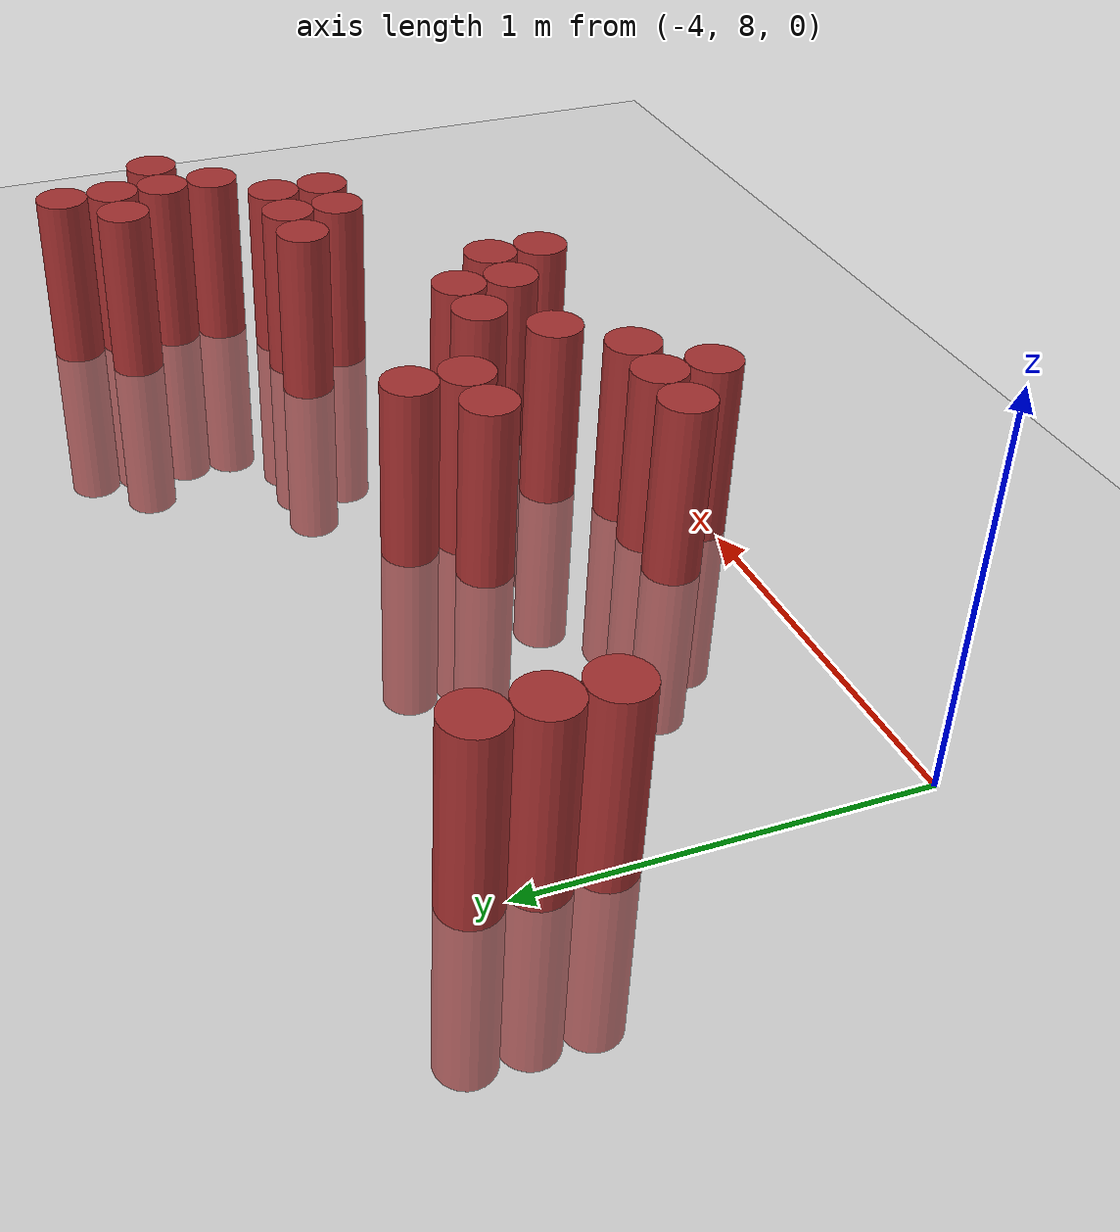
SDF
<sdf version="1.6">
 <world name="default">
  <model name="ground_plane">
   <static>1</static>
   <link name="link">
    <collision name="collision">
     <geometry><plane><normal>0 0 1</normal><size>100 100</size></plane></geometry>
     <surface><friction><ode><mu>100</mu><mu2>50</mu2></ode></friction></surface>
    </collision>
    <visual name="visual">
     <cast_shadows>0</cast_shadows>
     <geometry><plane><normal>0 0 1</normal><size>100 100</size></plane></geometry>
     <material>
      <script><uri>file://media/materials/scripts/gazebo.material</uri><name>Gazebo/Grey</name></script>
     </material>
    </visual>
   </link>
  </model>
  <model name="unit_cylinder_160">
   <static>1</static>
   <pose>-3.975000 8.775000 0.000000 0.000000 0.000000 0.000000</pose>
   <link name="link">
    <inertial>
     <mass>1</mass>
     <inertia><ixx>0.145833</ixx><ixy>0</ixy><ixz>0</ixz><iyy>0.145833</iyy><iyz>0</iyz><izz>0.125</izz></inertia>
    </inertial>
    <collision name="collision">
     <geometry><cylinder><radius>0.075000</radius><length>1</length></cylinder></geometry>
    </collision>
    <visual name="visual">
     <geometry><cylinder><radius>0.075000</radius><length>1</length></cylinder></geometry>
     <material>
      <ambient>0.648000 0.192000 0.192000 1</ambient>
      <diffuse>0.648000 0.192000 0.192000 1</diffuse>
     </material>
     <material>
      <script><name>Gazebo/Grey</name><uri>file://media/materials/scripts/gazebo.material</uri></script>
     </material>
    </visual>
   </link>
  </model>
  <model name="unit_cylinder_161">
   <static>1</static>
   <pose>-3.975000 8.925000 0.000000 0.000000 0.000000 0.000000</pose>
   <link name="link">
    <inertial>
     <mass>1</mass>
     <inertia><ixx>0.145833</ixx><ixy>0</ixy><ixz>0</ixz><iyy>0.145833</iyy><iyz>0</iyz><izz>0.125</izz></inertia>
    </inertial>
    <collision name="collision">
     <geometry><cylinder><radius>0.075000</radius><length>1</length></cylinder></geometry>
    </collision>
    <visual name="visual">
     <geometry><cylinder><radius>0.075000</radius><length>1</length></cylinder></geometry>
     <material>
      <ambient>0.648000 0.192000 0.192000 1</ambient>
      <diffuse>0.648000 0.192000 0.192000 1</diffuse>
     </material>
     <material>
      <script><name>Gazebo/Grey</name><uri>file://media/materials/scripts/gazebo.material</uri></script>
     </material>
    </visual>
   </link>
  </model>
  <model name="unit_cylinder_162">
   <static>1</static>
   <pose>-3.975000 9.075000 0.000000 0.000000 0.000000 0.000000</pose>
   <link name="link">
    <inertial>
     <mass>1</mass>
     <inertia><ixx>0.145833</ixx><ixy>0</ixy><ixz>0</ixz><iyy>0.145833</iyy><iyz>0</iyz><izz>0.125</izz></inertia>
    </inertial>
    <collision name="collision">
     <geometry><cylinder><radius>0.075000</radius><length>1</length></cylinder></geometry>
    </collision>
    <visual name="visual">
     <geometry><cylinder><radius>0.075000</radius><length>1</length></cylinder></geometry>
     <material>
      <ambient>0.648000 0.192000 0.192000 1</ambient>
      <diffuse>0.648000 0.192000 0.192000 1</diffuse>
     </material>
     <material>
      <script><name>Gazebo/Grey</name><uri>file://media/materials/scripts/gazebo.material</uri></script>
     </material>
    </visual>
   </link>
  </model>
  <model name="unit_cylinder_169">
   <static>1</static>
   <pose>-3.075000 8.175000 0.000000 0.000000 0.000000 0.000000</pose>
   <link name="link">
    <inertial>
     <mass>1</mass>
     <inertia><ixx>0.145833</ixx><ixy>0</ixy><ixz>0</ixz><iyy>0.145833</iyy><iyz>0</iyz><izz>0.125</izz></inertia>
    </inertial>
    <collision name="collision">
     <geometry><cylinder><radius>0.075000</radius><length>1</length></cylinder></geometry>
    </collision>
    <visual name="visual">
     <geometry><cylinder><radius>0.075000</radius><length>1</length></cylinder></geometry>
     <material>
      <ambient>0.648000 0.192000 0.192000 1</ambient>
      <diffuse>0.648000 0.192000 0.192000 1</diffuse>
     </material>
     <material>
      <script><name>Gazebo/Grey</name><uri>file://media/materials/scripts/gazebo.material</uri></script>
     </material>
    </visual>
   </link>
  </model>
  <model name="unit_cylinder_172">
   <static>1</static>
   <pose>-2.925000 8.025000 0.000000 0.000000 0.000000 0.000000</pose>
   <link name="link">
    <inertial>
     <mass>1</mass>
     <inertia><ixx>0.145833</ixx><ixy>0</ixy><ixz>0</ixz><iyy>0.145833</iyy><iyz>0</iyz><izz>0.125</izz></inertia>
    </inertial>
    <collision name="collision">
     <geometry><cylinder><radius>0.075000</radius><length>1</length></cylinder></geometry>
    </collision>
    <visual name="visual">
     <geometry><cylinder><radius>0.075000</radius><length>1</length></cylinder></geometry>
     <material>
      <ambient>0.648000 0.192000 0.192000 1</ambient>
      <diffuse>0.648000 0.192000 0.192000 1</diffuse>
     </material>
     <material>
      <script><name>Gazebo/Grey</name><uri>file://media/materials/scripts/gazebo.material</uri></script>
     </material>
    </visual>
   </link>
  </model>
  <model name="unit_cylinder_173">
   <static>1</static>
   <pose>-2.925000 8.175000 0.000000 0.000000 0.000000 0.000000</pose>
   <link name="link">
    <inertial>
     <mass>1</mass>
     <inertia><ixx>0.145833</ixx><ixy>0</ixy><ixz>0</ixz><iyy>0.145833</iyy><iyz>0</iyz><izz>0.125</izz></inertia>
    </inertial>
    <collision name="collision">
     <geometry><cylinder><radius>0.075000</radius><length>1</length></cylinder></geometry>
    </collision>
    <visual name="visual">
     <geometry><cylinder><radius>0.075000</radius><length>1</length></cylinder></geometry>
     <material>
      <ambient>0.648000 0.192000 0.192000 1</ambient>
      <diffuse>0.648000 0.192000 0.192000 1</diffuse>
     </material>
     <material>
      <script><name>Gazebo/Grey</name><uri>file://media/materials/scripts/gazebo.material</uri></script>
     </material>
    </visual>
   </link>
  </model>
  <model name="unit_cylinder_174">
   <static>1</static>
   <pose>-2.925000 8.625000 0.000000 0.000000 0.000000 0.000000</pose>
   <link name="link">
    <inertial>
     <mass>1</mass>
     <inertia><ixx>0.145833</ixx><ixy>0</ixy><ixz>0</ixz><iyy>0.145833</iyy><iyz>0</iyz><izz>0.125</izz></inertia>
    </inertial>
    <collision name="collision">
     <geometry><cylinder><radius>0.075000</radius><length>1</length></cylinder></geometry>
    </collision>
    <visual name="visual">
     <geometry><cylinder><radius>0.075000</radius><length>1</length></cylinder></geometry>
     <material>
      <ambient>0.648000 0.192000 0.192000 1</ambient>
      <diffuse>0.648000 0.192000 0.192000 1</diffuse>
     </material>
     <material>
      <script><name>Gazebo/Grey</name><uri>file://media/materials/scripts/gazebo.material</uri></script>
     </material>
    </visual>
   </link>
  </model>
  <model name="unit_cylinder_175">
   <static>1</static>
   <pose>-2.775000 8.175000 0.000000 0.000000 0.000000 0.000000</pose>
   <link name="link">
    <inertial>
     <mass>1</mass>
     <inertia><ixx>0.145833</ixx><ixy>0</ixy><ixz>0</ixz><iyy>0.145833</iyy><iyz>0</iyz><izz>0.125</izz></inertia>
    </inertial>
    <collision name="collision">
     <geometry><cylinder><radius>0.075000</radius><length>1</length></cylinder></geometry>
    </collision>
    <visual name="visual">
     <geometry><cylinder><radius>0.075000</radius><length>1</length></cylinder></geometry>
     <material>
      <ambient>0.648000 0.192000 0.192000 1</ambient>
      <diffuse>0.648000 0.192000 0.192000 1</diffuse>
     </material>
     <material>
      <script><name>Gazebo/Grey</name><uri>file://media/materials/scripts/gazebo.material</uri></script>
     </material>
    </visual>
   </link>
  </model>
  <model name="unit_cylinder_176">
   <static>1</static>
   <pose>-2.775000 8.625000 0.000000 0.000000 0.000000 0.000000</pose>
   <link name="link">
    <inertial>
     <mass>1</mass>
     <inertia><ixx>0.145833</ixx><ixy>0</ixy><ixz>0</ixz><iyy>0.145833</iyy><iyz>0</iyz><izz>0.125</izz></inertia>
    </inertial>
    <collision name="collision">
     <geometry><cylinder><radius>0.075000</radius><length>1</length></cylinder></geometry>
    </collision>
    <visual name="visual">
     <geometry><cylinder><radius>0.075000</radius><length>1</length></cylinder></geometry>
     <material>
      <ambient>0.648000 0.192000 0.192000 1</ambient>
      <diffuse>0.648000 0.192000 0.192000 1</diffuse>
     </material>
     <material>
      <script><name>Gazebo/Grey</name><uri>file://media/materials/scripts/gazebo.material</uri></script>
     </material>
    </visual>
   </link>
  </model>
  <model name="unit_cylinder_177">
   <static>1</static>
   <pose>-2.775000 8.775000 0.000000 0.000000 0.000000 0.000000</pose>
   <link name="link">
    <inertial>
     <mass>1</mass>
     <inertia><ixx>0.145833</ixx><ixy>0</ixy><ixz>0</ixz><iyy>0.145833</iyy><iyz>0</iyz><izz>0.125</izz></inertia>
    </inertial>
    <collision name="collision">
     <geometry><cylinder><radius>0.075000</radius><length>1</length></cylinder></geometry>
    </collision>
    <visual name="visual">
     <geometry><cylinder><radius>0.075000</radius><length>1</length></cylinder></geometry>
     <material>
      <ambient>0.648000 0.192000 0.192000 1</ambient>
      <diffuse>0.648000 0.192000 0.192000 1</diffuse>
     </material>
     <material>
      <script><name>Gazebo/Grey</name><uri>file://media/materials/scripts/gazebo.material</uri></script>
     </material>
    </visual>
   </link>
  </model>
  <model name="unit_cylinder_178">
   <static>1</static>
   <pose>-2.625000 8.325000 0.000000 0.000000 0.000000 0.000000</pose>
   <link name="link">
    <inertial>
     <mass>1</mass>
     <inertia><ixx>0.145833</ixx><ixy>0</ixy><ixz>0</ixz><iyy>0.145833</iyy><iyz>0</iyz><izz>0.125</izz></inertia>
    </inertial>
    <collision name="collision">
     <geometry><cylinder><radius>0.075000</radius><length>1</length></cylinder></geometry>
    </collision>
    <visual name="visual">
     <geometry><cylinder><radius>0.075000</radius><length>1</length></cylinder></geometry>
     <material>
      <ambient>0.648000 0.192000 0.192000 1</ambient>
      <diffuse>0.648000 0.192000 0.192000 1</diffuse>
     </material>
     <material>
      <script><name>Gazebo/Grey</name><uri>file://media/materials/scripts/gazebo.material</uri></script>
     </material>
    </visual>
   </link>
  </model>
  <model name="unit_cylinder_179">
   <static>1</static>
   <pose>-2.475000 8.475000 0.000000 0.000000 0.000000 0.000000</pose>
   <link name="link">
    <inertial>
     <mass>1</mass>
     <inertia><ixx>0.145833</ixx><ixy>0</ixy><ixz>0</ixz><iyy>0.145833</iyy><iyz>0</iyz><izz>0.125</izz></inertia>
    </inertial>
    <collision name="collision">
     <geometry><cylinder><radius>0.075000</radius><length>1</length></cylinder></geometry>
    </collision>
    <visual name="visual">
     <geometry><cylinder><radius>0.075000</radius><length>1</length></cylinder></geometry>
     <material>
      <ambient>0.648000 0.192000 0.192000 1</ambient>
      <diffuse>0.648000 0.192000 0.192000 1</diffuse>
     </material>
     <material>
      <script><name>Gazebo/Grey</name><uri>file://media/materials/scripts/gazebo.material</uri></script>
     </material>
    </visual>
   </link>
  </model>
  <model name="unit_cylinder_180">
   <static>1</static>
   <pose>-2.325000 8.325000 0.000000 0.000000 0.000000 0.000000</pose>
   <link name="link">
    <inertial>
     <mass>1</mass>
     <inertia><ixx>0.145833</ixx><ixy>0</ixy><ixz>0</ixz><iyy>0.145833</iyy><iyz>0</iyz><izz>0.125</izz></inertia>
    </inertial>
    <collision name="collision">
     <geometry><cylinder><radius>0.075000</radius><length>1</length></cylinder></geometry>
    </collision>
    <visual name="visual">
     <geometry><cylinder><radius>0.075000</radius><length>1</length></cylinder></geometry>
     <material>
      <ambient>0.648000 0.192000 0.192000 1</ambient>
      <diffuse>0.648000 0.192000 0.192000 1</diffuse>
     </material>
     <material>
      <script><name>Gazebo/Grey</name><uri>file://media/materials/scripts/gazebo.material</uri></script>
     </material>
    </visual>
   </link>
  </model>
  <model name="unit_cylinder_181">
   <static>1</static>
   <pose>-2.325000 8.475000 0.000000 0.000000 0.000000 0.000000</pose>
   <link name="link">
    <inertial>
     <mass>1</mass>
     <inertia><ixx>0.145833</ixx><ixy>0</ixy><ixz>0</ixz><iyy>0.145833</iyy><iyz>0</iyz><izz>0.125</izz></inertia>
    </inertial>
    <collision name="collision">
     <geometry><cylinder><radius>0.075000</radius><length>1</length></cylinder></geometry>
    </collision>
    <visual name="visual">
     <geometry><cylinder><radius>0.075000</radius><length>1</length></cylinder></geometry>
     <material>
      <ambient>0.648000 0.192000 0.192000 1</ambient>
      <diffuse>0.648000 0.192000 0.192000 1</diffuse>
     </material>
     <material>
      <script><name>Gazebo/Grey</name><uri>file://media/materials/scripts/gazebo.material</uri></script>
     </material>
    </visual>
   </link>
  </model>
  <model name="unit_cylinder_182">
   <static>1</static>
   <pose>-2.175000 8.175000 0.000000 0.000000 0.000000 0.000000</pose>
   <link name="link">
    <inertial>
     <mass>1</mass>
     <inertia><ixx>0.145833</ixx><ixy>0</ixy><ixz>0</ixz><iyy>0.145833</iyy><iyz>0</iyz><izz>0.125</izz></inertia>
    </inertial>
    <collision name="collision">
     <geometry><cylinder><radius>0.075000</radius><length>1</length></cylinder></geometry>
    </collision>
    <visual name="visual">
     <geometry><cylinder><radius>0.075000</radius><length>1</length></cylinder></geometry>
     <material>
      <ambient>0.648000 0.192000 0.192000 1</ambient>
      <diffuse>0.648000 0.192000 0.192000 1</diffuse>
     </material>
     <material>
      <script><name>Gazebo/Grey</name><uri>file://media/materials/scripts/gazebo.material</uri></script>
     </material>
    </visual>
   </link>
  </model>
  <model name="unit_cylinder_183">
   <static>1</static>
   <pose>-2.175000 8.325000 0.000000 0.000000 0.000000 0.000000</pose>
   <link name="link">
    <inertial>
     <mass>1</mass>
     <inertia><ixx>0.145833</ixx><ixy>0</ixy><ixz>0</ixz><iyy>0.145833</iyy><iyz>0</iyz><izz>0.125</izz></inertia>
    </inertial>
    <collision name="collision">
     <geometry><cylinder><radius>0.075000</radius><length>1</length></cylinder></geometry>
    </collision>
    <visual name="visual">
     <geometry><cylinder><radius>0.075000</radius><length>1</length></cylinder></geometry>
     <material>
      <ambient>0.648000 0.192000 0.192000 1</ambient>
      <diffuse>0.648000 0.192000 0.192000 1</diffuse>
     </material>
     <material>
      <script><name>Gazebo/Grey</name><uri>file://media/materials/scripts/gazebo.material</uri></script>
     </material>
    </visual>
   </link>
  </model>
  <model name="unit_cylinder_189">
   <static>1</static>
   <pose>-1.875000 8.775000 0.000000 0.000000 0.000000 0.000000</pose>
   <link name="link">
    <inertial>
     <mass>1</mass>
     <inertia><ixx>0.145833</ixx><ixy>0</ixy><ixz>0</ixz><iyy>0.145833</iyy><iyz>0</iyz><izz>0.125</izz></inertia>
    </inertial>
    <collision name="collision">
     <geometry><cylinder><radius>0.075000</radius><length>1</length></cylinder></geometry>
    </collision>
    <visual name="visual">
     <geometry><cylinder><radius>0.075000</radius><length>1</length></cylinder></geometry>
     <material>
      <ambient>0.648000 0.192000 0.192000 1</ambient>
      <diffuse>0.648000 0.192000 0.192000 1</diffuse>
     </material>
     <material>
      <script><name>Gazebo/Grey</name><uri>file://media/materials/scripts/gazebo.material</uri></script>
     </material>
    </visual>
   </link>
  </model>
  <model name="unit_cylinder_193">
   <static>1</static>
   <pose>-1.725000 8.625000 0.000000 0.000000 0.000000 0.000000</pose>
   <link name="link">
    <inertial>
     <mass>1</mass>
     <inertia><ixx>0.145833</ixx><ixy>0</ixy><ixz>0</ixz><iyy>0.145833</iyy><iyz>0</iyz><izz>0.125</izz></inertia>
    </inertial>
    <collision name="collision">
     <geometry><cylinder><radius>0.075000</radius><length>1</length></cylinder></geometry>
    </collision>
    <visual name="visual">
     <geometry><cylinder><radius>0.075000</radius><length>1</length></cylinder></geometry>
     <material>
      <ambient>0.648000 0.192000 0.192000 1</ambient>
      <diffuse>0.648000 0.192000 0.192000 1</diffuse>
     </material>
     <material>
      <script><name>Gazebo/Grey</name><uri>file://media/materials/scripts/gazebo.material</uri></script>
     </material>
    </visual>
   </link>
  </model>
  <model name="unit_cylinder_194">
   <static>1</static>
   <pose>-1.725000 8.775000 0.000000 0.000000 0.000000 0.000000</pose>
   <link name="link">
    <inertial>
     <mass>1</mass>
     <inertia><ixx>0.145833</ixx><ixy>0</ixy><ixz>0</ixz><iyy>0.145833</iyy><iyz>0</iyz><izz>0.125</izz></inertia>
    </inertial>
    <collision name="collision">
     <geometry><cylinder><radius>0.075000</radius><length>1</length></cylinder></geometry>
    </collision>
    <visual name="visual">
     <geometry><cylinder><radius>0.075000</radius><length>1</length></cylinder></geometry>
     <material>
      <ambient>0.648000 0.192000 0.192000 1</ambient>
      <diffuse>0.648000 0.192000 0.192000 1</diffuse>
     </material>
     <material>
      <script><name>Gazebo/Grey</name><uri>file://media/materials/scripts/gazebo.material</uri></script>
     </material>
    </visual>
   </link>
  </model>
  <model name="unit_cylinder_197">
   <static>1</static>
   <pose>-1.575000 8.625000 0.000000 0.000000 0.000000 0.000000</pose>
   <link name="link">
    <inertial>
     <mass>1</mass>
     <inertia><ixx>0.145833</ixx><ixy>0</ixy><ixz>0</ixz><iyy>0.145833</iyy><iyz>0</iyz><izz>0.125</izz></inertia>
    </inertial>
    <collision name="collision">
     <geometry><cylinder><radius>0.075000</radius><length>1</length></cylinder></geometry>
    </collision>
    <visual name="visual">
     <geometry><cylinder><radius>0.075000</radius><length>1</length></cylinder></geometry>
     <material>
      <ambient>0.648000 0.192000 0.192000 1</ambient>
      <diffuse>0.648000 0.192000 0.192000 1</diffuse>
     </material>
     <material>
      <script><name>Gazebo/Grey</name><uri>file://media/materials/scripts/gazebo.material</uri></script>
     </material>
    </visual>
   </link>
  </model>
  <model name="unit_cylinder_198">
   <static>1</static>
   <pose>-1.575000 8.775000 0.000000 0.000000 0.000000 0.000000</pose>
   <link name="link">
    <inertial>
     <mass>1</mass>
     <inertia><ixx>0.145833</ixx><ixy>0</ixy><ixz>0</ixz><iyy>0.145833</iyy><iyz>0</iyz><izz>0.125</izz></inertia>
    </inertial>
    <collision name="collision">
     <geometry><cylinder><radius>0.075000</radius><length>1</length></cylinder></geometry>
    </collision>
    <visual name="visual">
     <geometry><cylinder><radius>0.075000</radius><length>1</length></cylinder></geometry>
     <material>
      <ambient>0.648000 0.192000 0.192000 1</ambient>
      <diffuse>0.648000 0.192000 0.192000 1</diffuse>
     </material>
     <material>
      <script><name>Gazebo/Grey</name><uri>file://media/materials/scripts/gazebo.material</uri></script>
     </material>
    </visual>
   </link>
  </model>
  <model name="unit_cylinder_199">
   <static>1</static>
   <pose>-1.575000 9.225000 0.000000 0.000000 0.000000 0.000000</pose>
   <link name="link">
    <inertial>
     <mass>1</mass>
     <inertia><ixx>0.145833</ixx><ixy>0</ixy><ixz>0</ixz><iyy>0.145833</iyy><iyz>0</iyz><izz>0.125</izz></inertia>
    </inertial>
    <collision name="collision">
     <geometry><cylinder><radius>0.075000</radius><length>1</length></cylinder></geometry>
    </collision>
    <visual name="visual">
     <geometry><cylinder><radius>0.075000</radius><length>1</length></cylinder></geometry>
     <material>
      <ambient>0.648000 0.192000 0.192000 1</ambient>
      <diffuse>0.648000 0.192000 0.192000 1</diffuse>
     </material>
     <material>
      <script><name>Gazebo/Grey</name><uri>file://media/materials/scripts/gazebo.material</uri></script>
     </material>
    </visual>
   </link>
  </model>
  <model name="unit_cylinder_203">
   <static>1</static>
   <pose>-1.425000 8.925000 0.000000 0.000000 0.000000 0.000000</pose>
   <link name="link">
    <inertial>
     <mass>1</mass>
     <inertia><ixx>0.145833</ixx><ixy>0</ixy><ixz>0</ixz><iyy>0.145833</iyy><iyz>0</iyz><izz>0.125</izz></inertia>
    </inertial>
    <collision name="collision">
     <geometry><cylinder><radius>0.075000</radius><length>1</length></cylinder></geometry>
    </collision>
    <visual name="visual">
     <geometry><cylinder><radius>0.075000</radius><length>1</length></cylinder></geometry>
     <material>
      <ambient>0.648000 0.192000 0.192000 1</ambient>
      <diffuse>0.648000 0.192000 0.192000 1</diffuse>
     </material>
     <material>
      <script><name>Gazebo/Grey</name><uri>file://media/materials/scripts/gazebo.material</uri></script>
     </material>
    </visual>
   </link>
  </model>
  <model name="unit_cylinder_204">
   <static>1</static>
   <pose>-1.425000 9.075000 0.000000 0.000000 0.000000 0.000000</pose>
   <link name="link">
    <inertial>
     <mass>1</mass>
     <inertia><ixx>0.145833</ixx><ixy>0</ixy><ixz>0</ixz><iyy>0.145833</iyy><iyz>0</iyz><izz>0.125</izz></inertia>
    </inertial>
    <collision name="collision">
     <geometry><cylinder><radius>0.075000</radius><length>1</length></cylinder></geometry>
    </collision>
    <visual name="visual">
     <geometry><cylinder><radius>0.075000</radius><length>1</length></cylinder></geometry>
     <material>
      <ambient>0.648000 0.192000 0.192000 1</ambient>
      <diffuse>0.648000 0.192000 0.192000 1</diffuse>
     </material>
     <material>
      <script><name>Gazebo/Grey</name><uri>file://media/materials/scripts/gazebo.material</uri></script>
     </material>
    </visual>
   </link>
  </model>
  <model name="unit_cylinder_205">
   <static>1</static>
   <pose>-1.425000 9.225000 0.000000 0.000000 0.000000 0.000000</pose>
   <link name="link">
    <inertial>
     <mass>1</mass>
     <inertia><ixx>0.145833</ixx><ixy>0</ixy><ixz>0</ixz><iyy>0.145833</iyy><iyz>0</iyz><izz>0.125</izz></inertia>
    </inertial>
    <collision name="collision">
     <geometry><cylinder><radius>0.075000</radius><length>1</length></cylinder></geometry>
    </collision>
    <visual name="visual">
     <geometry><cylinder><radius>0.075000</radius><length>1</length></cylinder></geometry>
     <material>
      <ambient>0.648000 0.192000 0.192000 1</ambient>
      <diffuse>0.648000 0.192000 0.192000 1</diffuse>
     </material>
     <material>
      <script><name>Gazebo/Grey</name><uri>file://media/materials/scripts/gazebo.material</uri></script>
     </material>
    </visual>
   </link>
  </model>
  <model name="unit_cylinder_206">
   <static>1</static>
   <pose>-1.425000 9.375000 0.000000 0.000000 0.000000 0.000000</pose>
   <link name="link">
    <inertial>
     <mass>1</mass>
     <inertia><ixx>0.145833</ixx><ixy>0</ixy><ixz>0</ixz><iyy>0.145833</iyy><iyz>0</iyz><izz>0.125</izz></inertia>
    </inertial>
    <collision name="collision">
     <geometry><cylinder><radius>0.075000</radius><length>1</length></cylinder></geometry>
    </collision>
    <visual name="visual">
     <geometry><cylinder><radius>0.075000</radius><length>1</length></cylinder></geometry>
     <material>
      <ambient>0.648000 0.192000 0.192000 1</ambient>
      <diffuse>0.648000 0.192000 0.192000 1</diffuse>
     </material>
     <material>
      <script><name>Gazebo/Grey</name><uri>file://media/materials/scripts/gazebo.material</uri></script>
     </material>
    </visual>
   </link>
  </model>
  <model name="unit_cylinder_208">
   <static>1</static>
   <pose>-1.275000 9.075000 0.000000 0.000000 0.000000 0.000000</pose>
   <link name="link">
    <inertial>
     <mass>1</mass>
     <inertia><ixx>0.145833</ixx><ixy>0</ixy><ixz>0</ixz><iyy>0.145833</iyy><iyz>0</iyz><izz>0.125</izz></inertia>
    </inertial>
    <collision name="collision">
     <geometry><cylinder><radius>0.075000</radius><length>1</length></cylinder></geometry>
    </collision>
    <visual name="visual">
     <geometry><cylinder><radius>0.075000</radius><length>1</length></cylinder></geometry>
     <material>
      <ambient>0.648000 0.192000 0.192000 1</ambient>
      <diffuse>0.648000 0.192000 0.192000 1</diffuse>
     </material>
     <material>
      <script><name>Gazebo/Grey</name><uri>file://media/materials/scripts/gazebo.material</uri></script>
     </material>
    </visual>
   </link>
  </model>
 </world>
</sdf>
